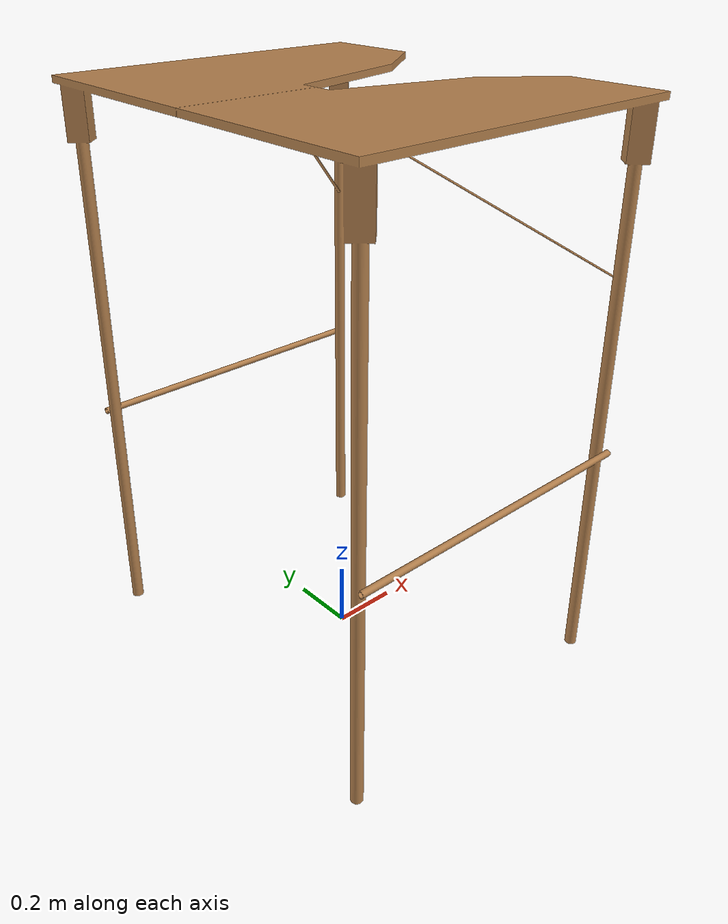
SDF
<?xml version="1.0" ?>
<sdf version="1.5">
  <model name="landing_platform">
    <static>true</static>
    <link name="platform">
      <pose>0 0 0 0 0 0</pose>
      <collision name="collision">
        <geometry>
          <mesh>
            <uri>model://landing_platform/meshes/landing_platform.dae</uri>
            <scale>1e-3 1e-3 1e-3</scale>
          </mesh>
        </geometry>
      </collision>
      <visual name="visual">
        <geometry>
          <mesh>
            <uri>model://landing_platform/meshes/landing_platform.dae</uri>
            <scale>1e-3 1e-3 1e-3</scale>
          </mesh>
        </geometry>
        <material>
          <script>
            <name>Gazebo/WoodPallet</name>
            <uri>file://media/materials/scripts/gazebo.material</uri>
          </script>
        </material>
      </visual>
    </link>
  </model>
</sdf>
